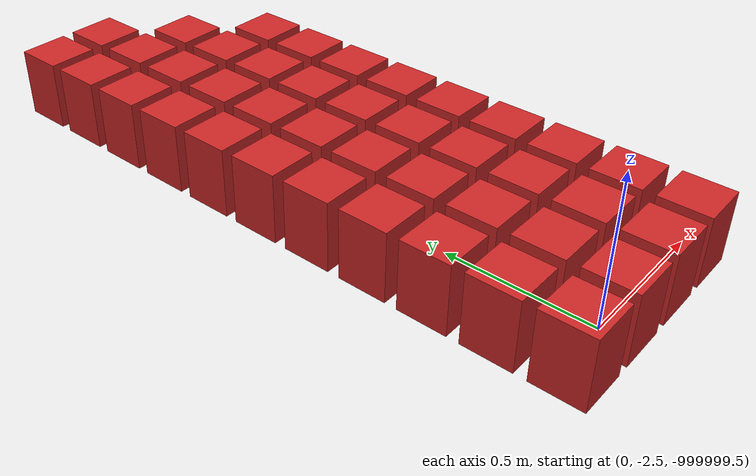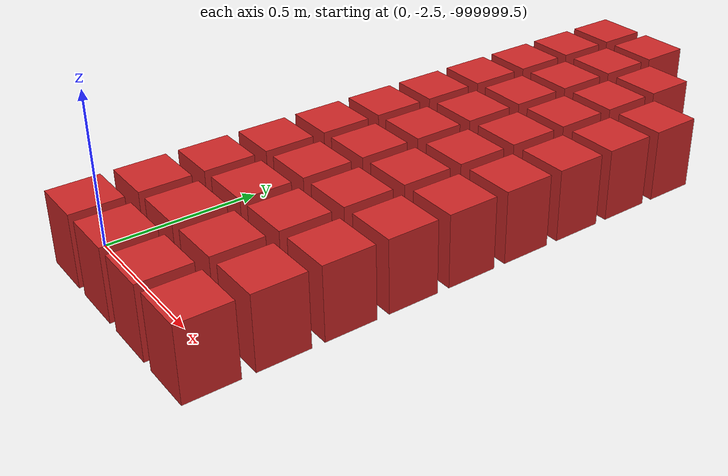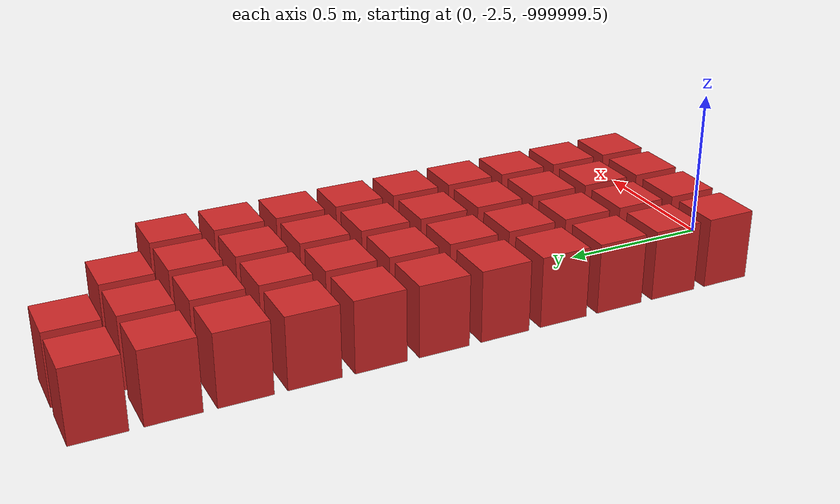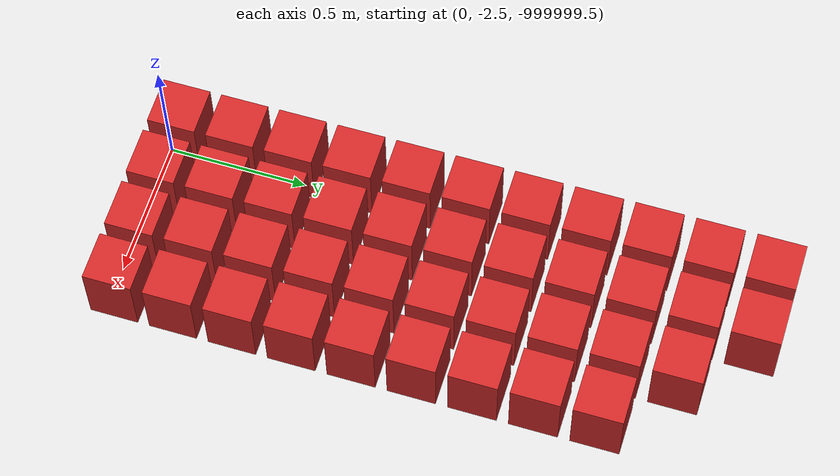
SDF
<sdf version="1.7">
 <world name="default">
  <model name="ground_plane">
   <static>1</static>
   <link name="link">
    <collision name="collision">
     <geometry><plane><normal>0 0 1</normal><size>100 100</size></plane></geometry>
     <surface>
      <contact><collide_bitmask>65535</collide_bitmask></contact>
      <friction><ode><mu>100</mu><mu2>50</mu2></ode></friction>
     </surface>
    </collision>
    <visual name="visual">
     <cast_shadows>0</cast_shadows>
     <geometry><plane><normal>0 0 1</normal><size>100 100</size></plane></geometry>
     <material>
      <script><uri>file://media/materials/scripts/gazebo.material</uri><name>Gazebo/Grey</name></script>
     </material>
    </visual>
   </link>
  </model>
  <model name="wall_11">
   <link name="link">
    <pose>0 0 0.5 0 -0 0</pose>
    <inertial>
     <mass>0.5167</mass>
     <inertia>
      <ixx>0.000861167</ixx>
      <ixy>0</ixy>
      <ixz>0</ixz>
      <iyy>0.000861167</iyy>
      <iyz>0</iyz>
      <izz>0.000861167</izz>
     </inertia>
    </inertial>
    <collision name="collision">
     <geometry><box><size>0.21 0.21 0.25</size></box></geometry>
     <surface>
      <contact>
       <poissons_ratio>0.347</poissons_ratio>
       <elastic_modulus>8.8e+09</elastic_modulus>
       <ode><kp>100000</kp><kd>100</kd><max_vel>100</max_vel><min_depth>0.001</min_depth></ode>
      </contact>
      <friction>
       <torsional>
        <coefficient>1</coefficient>
        <use_patch_radius>0</use_patch_radius>
        <surface_radius>0.01</surface_radius>
       </torsional>
      </friction>
     </surface>
    </collision>
    <visual name="visual">
     <geometry><box><size>0.175 0.175 0.25</size></box></geometry>
     <material>
      <script><uri>file://media/materials/scripts/gazebo.material</uri><name>Gazebo/Red</name></script>
     </material>
    </visual>
   </link>
   <pose>-0.108696 -2.5 -1e+06 0 -0 0</pose>
  </model>
  <model name="wall_12">
   <link name="link">
    <pose>0 0 0.5 0 -0 0</pose>
    <inertial>
     <mass>0.5167</mass>
     <inertia>
      <ixx>0.000861167</ixx>
      <ixy>0</ixy>
      <ixz>0</ixz>
      <iyy>0.000861167</iyy>
      <iyz>0</iyz>
      <izz>0.000861167</izz>
     </inertia>
    </inertial>
    <collision name="collision">
     <geometry><box><size>0.21 0.21 0.25</size></box></geometry>
     <surface>
      <contact>
       <poissons_ratio>0.347</poissons_ratio>
       <elastic_modulus>8.8e+09</elastic_modulus>
       <ode><kp>100000</kp><kd>100</kd><max_vel>100</max_vel><min_depth>0.001</min_depth></ode>
      </contact>
      <friction>
       <torsional>
        <coefficient>1</coefficient>
        <use_patch_radius>0</use_patch_radius>
        <surface_radius>0.01</surface_radius>
       </torsional>
      </friction>
     </surface>
    </collision>
    <visual name="visual">
     <geometry><box><size>0.175 0.175 0.25</size></box></geometry>
     <material>
      <script><uri>file://media/materials/scripts/gazebo.material</uri><name>Gazebo/Red</name></script>
     </material>
    </visual>
   </link>
   <pose>0.108696 -2.5 -1e+06 0 -0 0</pose>
  </model>
  <model name="wall_13">
   <link name="link">
    <pose>0 0 0.5 0 -0 0</pose>
    <inertial>
     <mass>0.5167</mass>
     <inertia>
      <ixx>0.000861167</ixx>
      <ixy>0</ixy>
      <ixz>0</ixz>
      <iyy>0.000861167</iyy>
      <iyz>0</iyz>
      <izz>0.000861167</izz>
     </inertia>
    </inertial>
    <collision name="collision">
     <geometry><box><size>0.21 0.21 0.25</size></box></geometry>
     <surface>
      <contact>
       <poissons_ratio>0.347</poissons_ratio>
       <elastic_modulus>8.8e+09</elastic_modulus>
       <ode><kp>100000</kp><kd>100</kd><max_vel>100</max_vel><min_depth>0.001</min_depth></ode>
      </contact>
      <friction>
       <torsional>
        <coefficient>1</coefficient>
        <use_patch_radius>0</use_patch_radius>
        <surface_radius>0.01</surface_radius>
       </torsional>
      </friction>
     </surface>
    </collision>
    <visual name="visual">
     <geometry><box><size>0.175 0.175 0.25</size></box></geometry>
     <material>
      <script><uri>file://media/materials/scripts/gazebo.material</uri><name>Gazebo/Red</name></script>
     </material>
    </visual>
   </link>
   <pose>0.326087 -2.5 -1e+06 0 -0 0</pose>
  </model>
  <model name="wall_14">
   <link name="link">
    <pose>0 0 0.5 0 -0 0</pose>
    <inertial>
     <mass>0.5167</mass>
     <inertia>
      <ixx>0.000861167</ixx>
      <ixy>0</ixy>
      <ixz>0</ixz>
      <iyy>0.000861167</iyy>
      <iyz>0</iyz>
      <izz>0.000861167</izz>
     </inertia>
    </inertial>
    <collision name="collision">
     <geometry><box><size>0.21 0.21 0.25</size></box></geometry>
     <surface>
      <contact>
       <poissons_ratio>0.347</poissons_ratio>
       <elastic_modulus>8.8e+09</elastic_modulus>
       <ode><kp>100000</kp><kd>100</kd><max_vel>100</max_vel><min_depth>0.001</min_depth></ode>
      </contact>
      <friction>
       <torsional>
        <coefficient>1</coefficient>
        <use_patch_radius>0</use_patch_radius>
        <surface_radius>0.01</surface_radius>
       </torsional>
      </friction>
     </surface>
    </collision>
    <visual name="visual">
     <geometry><box><size>0.175 0.175 0.25</size></box></geometry>
     <material>
      <script><uri>file://media/materials/scripts/gazebo.material</uri><name>Gazebo/Red</name></script>
     </material>
    </visual>
   </link>
   <pose>0.543478 -2.5 -1e+06 0 -0 0</pose>
  </model>
  <model name="wall_34">
   <link name="link">
    <pose>0 0 0.5 0 -0 0</pose>
    <inertial>
     <mass>0.5167</mass>
     <inertia>
      <ixx>0.000861167</ixx>
      <ixy>0</ixy>
      <ixz>0</ixz>
      <iyy>0.000861167</iyy>
      <iyz>0</iyz>
      <izz>0.000861167</izz>
     </inertia>
    </inertial>
    <collision name="collision">
     <geometry><box><size>0.21 0.21 0.25</size></box></geometry>
     <surface>
      <contact>
       <poissons_ratio>0.347</poissons_ratio>
       <elastic_modulus>8.8e+09</elastic_modulus>
       <ode><kp>100000</kp><kd>100</kd><max_vel>100</max_vel><min_depth>0.001</min_depth></ode>
      </contact>
      <friction>
       <torsional>
        <coefficient>1</coefficient>
        <use_patch_radius>0</use_patch_radius>
        <surface_radius>0.01</surface_radius>
       </torsional>
      </friction>
     </surface>
    </collision>
    <visual name="visual">
     <geometry><box><size>0.175 0.175 0.25</size></box></geometry>
     <material>
      <script><uri>file://media/materials/scripts/gazebo.material</uri><name>Gazebo/Red</name></script>
     </material>
    </visual>
   </link>
   <pose>-0.108696 -2.28261 -1e+06 0 -0 0</pose>
  </model>
  <model name="wall_35">
   <link name="link">
    <pose>0 0 0.5 0 -0 0</pose>
    <inertial>
     <mass>0.5167</mass>
     <inertia>
      <ixx>0.000861167</ixx>
      <ixy>0</ixy>
      <ixz>0</ixz>
      <iyy>0.000861167</iyy>
      <iyz>0</iyz>
      <izz>0.000861167</izz>
     </inertia>
    </inertial>
    <collision name="collision">
     <geometry><box><size>0.21 0.21 0.25</size></box></geometry>
     <surface>
      <contact>
       <poissons_ratio>0.347</poissons_ratio>
       <elastic_modulus>8.8e+09</elastic_modulus>
       <ode><kp>100000</kp><kd>100</kd><max_vel>100</max_vel><min_depth>0.001</min_depth></ode>
      </contact>
      <friction>
       <torsional>
        <coefficient>1</coefficient>
        <use_patch_radius>0</use_patch_radius>
        <surface_radius>0.01</surface_radius>
       </torsional>
      </friction>
     </surface>
    </collision>
    <visual name="visual">
     <geometry><box><size>0.175 0.175 0.25</size></box></geometry>
     <material>
      <script><uri>file://media/materials/scripts/gazebo.material</uri><name>Gazebo/Red</name></script>
     </material>
    </visual>
   </link>
   <pose>0.108696 -2.28261 -1e+06 0 -0 0</pose>
  </model>
  <model name="wall_36">
   <link name="link">
    <pose>0 0 0.5 0 -0 0</pose>
    <inertial>
     <mass>0.5167</mass>
     <inertia>
      <ixx>0.000861167</ixx>
      <ixy>0</ixy>
      <ixz>0</ixz>
      <iyy>0.000861167</iyy>
      <iyz>0</iyz>
      <izz>0.000861167</izz>
     </inertia>
    </inertial>
    <collision name="collision">
     <geometry><box><size>0.21 0.21 0.25</size></box></geometry>
     <surface>
      <contact>
       <poissons_ratio>0.347</poissons_ratio>
       <elastic_modulus>8.8e+09</elastic_modulus>
       <ode><kp>100000</kp><kd>100</kd><max_vel>100</max_vel><min_depth>0.001</min_depth></ode>
      </contact>
      <friction>
       <torsional>
        <coefficient>1</coefficient>
        <use_patch_radius>0</use_patch_radius>
        <surface_radius>0.01</surface_radius>
       </torsional>
      </friction>
     </surface>
    </collision>
    <visual name="visual">
     <geometry><box><size>0.175 0.175 0.25</size></box></geometry>
     <material>
      <script><uri>file://media/materials/scripts/gazebo.material</uri><name>Gazebo/Red</name></script>
     </material>
    </visual>
   </link>
   <pose>0.326087 -2.28261 -1e+06 0 -0 0</pose>
  </model>
  <model name="wall_37">
   <link name="link">
    <pose>0 0 0.5 0 -0 0</pose>
    <inertial>
     <mass>0.5167</mass>
     <inertia>
      <ixx>0.000861167</ixx>
      <ixy>0</ixy>
      <ixz>0</ixz>
      <iyy>0.000861167</iyy>
      <iyz>0</iyz>
      <izz>0.000861167</izz>
     </inertia>
    </inertial>
    <collision name="collision">
     <geometry><box><size>0.21 0.21 0.25</size></box></geometry>
     <surface>
      <contact>
       <poissons_ratio>0.347</poissons_ratio>
       <elastic_modulus>8.8e+09</elastic_modulus>
       <ode><kp>100000</kp><kd>100</kd><max_vel>100</max_vel><min_depth>0.001</min_depth></ode>
      </contact>
      <friction>
       <torsional>
        <coefficient>1</coefficient>
        <use_patch_radius>0</use_patch_radius>
        <surface_radius>0.01</surface_radius>
       </torsional>
      </friction>
     </surface>
    </collision>
    <visual name="visual">
     <geometry><box><size>0.175 0.175 0.25</size></box></geometry>
     <material>
      <script><uri>file://media/materials/scripts/gazebo.material</uri><name>Gazebo/Red</name></script>
     </material>
    </visual>
   </link>
   <pose>0.543478 -2.28261 -1e+06 0 -0 0</pose>
  </model>
  <model name="wall_57">
   <link name="link">
    <pose>0 0 0.5 0 -0 0</pose>
    <inertial>
     <mass>0.5167</mass>
     <inertia>
      <ixx>0.000861167</ixx>
      <ixy>0</ixy>
      <ixz>0</ixz>
      <iyy>0.000861167</iyy>
      <iyz>0</iyz>
      <izz>0.000861167</izz>
     </inertia>
    </inertial>
    <collision name="collision">
     <geometry><box><size>0.21 0.21 0.25</size></box></geometry>
     <surface>
      <contact>
       <poissons_ratio>0.347</poissons_ratio>
       <elastic_modulus>8.8e+09</elastic_modulus>
       <ode><kp>100000</kp><kd>100</kd><max_vel>100</max_vel><min_depth>0.001</min_depth></ode>
      </contact>
      <friction>
       <torsional>
        <coefficient>1</coefficient>
        <use_patch_radius>0</use_patch_radius>
        <surface_radius>0.01</surface_radius>
       </torsional>
      </friction>
     </surface>
    </collision>
    <visual name="visual">
     <geometry><box><size>0.175 0.175 0.25</size></box></geometry>
     <material>
      <script><uri>file://media/materials/scripts/gazebo.material</uri><name>Gazebo/Red</name></script>
     </material>
    </visual>
   </link>
   <pose>-0.108696 -2.06522 -1e+06 0 -0 0</pose>
  </model>
  <model name="wall_58">
   <link name="link">
    <pose>0 0 0.5 0 -0 0</pose>
    <inertial>
     <mass>0.5167</mass>
     <inertia>
      <ixx>0.000861167</ixx>
      <ixy>0</ixy>
      <ixz>0</ixz>
      <iyy>0.000861167</iyy>
      <iyz>0</iyz>
      <izz>0.000861167</izz>
     </inertia>
    </inertial>
    <collision name="collision">
     <geometry><box><size>0.21 0.21 0.25</size></box></geometry>
     <surface>
      <contact>
       <poissons_ratio>0.347</poissons_ratio>
       <elastic_modulus>8.8e+09</elastic_modulus>
       <ode><kp>100000</kp><kd>100</kd><max_vel>100</max_vel><min_depth>0.001</min_depth></ode>
      </contact>
      <friction>
       <torsional>
        <coefficient>1</coefficient>
        <use_patch_radius>0</use_patch_radius>
        <surface_radius>0.01</surface_radius>
       </torsional>
      </friction>
     </surface>
    </collision>
    <visual name="visual">
     <geometry><box><size>0.175 0.175 0.25</size></box></geometry>
     <material>
      <script><uri>file://media/materials/scripts/gazebo.material</uri><name>Gazebo/Red</name></script>
     </material>
    </visual>
   </link>
   <pose>0.108696 -2.06522 -1e+06 0 -0 0</pose>
  </model>
  <model name="wall_59">
   <link name="link">
    <pose>0 0 0.5 0 -0 0</pose>
    <inertial>
     <mass>0.5167</mass>
     <inertia>
      <ixx>0.000861167</ixx>
      <ixy>0</ixy>
      <ixz>0</ixz>
      <iyy>0.000861167</iyy>
      <iyz>0</iyz>
      <izz>0.000861167</izz>
     </inertia>
    </inertial>
    <collision name="collision">
     <geometry><box><size>0.21 0.21 0.25</size></box></geometry>
     <surface>
      <contact>
       <poissons_ratio>0.347</poissons_ratio>
       <elastic_modulus>8.8e+09</elastic_modulus>
       <ode><kp>100000</kp><kd>100</kd><max_vel>100</max_vel><min_depth>0.001</min_depth></ode>
      </contact>
      <friction>
       <torsional>
        <coefficient>1</coefficient>
        <use_patch_radius>0</use_patch_radius>
        <surface_radius>0.01</surface_radius>
       </torsional>
      </friction>
     </surface>
    </collision>
    <visual name="visual">
     <geometry><box><size>0.175 0.175 0.25</size></box></geometry>
     <material>
      <script><uri>file://media/materials/scripts/gazebo.material</uri><name>Gazebo/Red</name></script>
     </material>
    </visual>
   </link>
   <pose>0.326087 -2.06522 -1e+06 0 -0 0</pose>
  </model>
  <model name="wall_60">
   <link name="link">
    <pose>0 0 0.5 0 -0 0</pose>
    <inertial>
     <mass>0.5167</mass>
     <inertia>
      <ixx>0.000861167</ixx>
      <ixy>0</ixy>
      <ixz>0</ixz>
      <iyy>0.000861167</iyy>
      <iyz>0</iyz>
      <izz>0.000861167</izz>
     </inertia>
    </inertial>
    <collision name="collision">
     <geometry><box><size>0.21 0.21 0.25</size></box></geometry>
     <surface>
      <contact>
       <poissons_ratio>0.347</poissons_ratio>
       <elastic_modulus>8.8e+09</elastic_modulus>
       <ode><kp>100000</kp><kd>100</kd><max_vel>100</max_vel><min_depth>0.001</min_depth></ode>
      </contact>
      <friction>
       <torsional>
        <coefficient>1</coefficient>
        <use_patch_radius>0</use_patch_radius>
        <surface_radius>0.01</surface_radius>
       </torsional>
      </friction>
     </surface>
    </collision>
    <visual name="visual">
     <geometry><box><size>0.175 0.175 0.25</size></box></geometry>
     <material>
      <script><uri>file://media/materials/scripts/gazebo.material</uri><name>Gazebo/Red</name></script>
     </material>
    </visual>
   </link>
   <pose>0.543478 -2.06522 -1e+06 0 -0 0</pose>
  </model>
  <model name="wall_80">
   <link name="link">
    <pose>0 0 0.5 0 -0 0</pose>
    <inertial>
     <mass>0.5167</mass>
     <inertia>
      <ixx>0.000861167</ixx>
      <ixy>0</ixy>
      <ixz>0</ixz>
      <iyy>0.000861167</iyy>
      <iyz>0</iyz>
      <izz>0.000861167</izz>
     </inertia>
    </inertial>
    <collision name="collision">
     <geometry><box><size>0.21 0.21 0.25</size></box></geometry>
     <surface>
      <contact>
       <poissons_ratio>0.347</poissons_ratio>
       <elastic_modulus>8.8e+09</elastic_modulus>
       <ode><kp>100000</kp><kd>100</kd><max_vel>100</max_vel><min_depth>0.001</min_depth></ode>
      </contact>
      <friction>
       <torsional>
        <coefficient>1</coefficient>
        <use_patch_radius>0</use_patch_radius>
        <surface_radius>0.01</surface_radius>
       </torsional>
      </friction>
     </surface>
    </collision>
    <visual name="visual">
     <geometry><box><size>0.175 0.175 0.25</size></box></geometry>
     <material>
      <script><uri>file://media/materials/scripts/gazebo.material</uri><name>Gazebo/Red</name></script>
     </material>
    </visual>
   </link>
   <pose>-0.108696 -1.84783 -1e+06 0 -0 0</pose>
  </model>
  <model name="wall_81">
   <link name="link">
    <pose>0 0 0.5 0 -0 0</pose>
    <inertial>
     <mass>0.5167</mass>
     <inertia>
      <ixx>0.000861167</ixx>
      <ixy>0</ixy>
      <ixz>0</ixz>
      <iyy>0.000861167</iyy>
      <iyz>0</iyz>
      <izz>0.000861167</izz>
     </inertia>
    </inertial>
    <collision name="collision">
     <geometry><box><size>0.21 0.21 0.25</size></box></geometry>
     <surface>
      <contact>
       <poissons_ratio>0.347</poissons_ratio>
       <elastic_modulus>8.8e+09</elastic_modulus>
       <ode><kp>100000</kp><kd>100</kd><max_vel>100</max_vel><min_depth>0.001</min_depth></ode>
      </contact>
      <friction>
       <torsional>
        <coefficient>1</coefficient>
        <use_patch_radius>0</use_patch_radius>
        <surface_radius>0.01</surface_radius>
       </torsional>
      </friction>
     </surface>
    </collision>
    <visual name="visual">
     <geometry><box><size>0.175 0.175 0.25</size></box></geometry>
     <material>
      <script><uri>file://media/materials/scripts/gazebo.material</uri><name>Gazebo/Red</name></script>
     </material>
    </visual>
   </link>
   <pose>0.108696 -1.84783 -1e+06 0 -0 0</pose>
  </model>
  <model name="wall_82">
   <link name="link">
    <pose>0 0 0.5 0 -0 0</pose>
    <inertial>
     <mass>0.5167</mass>
     <inertia>
      <ixx>0.000861167</ixx>
      <ixy>0</ixy>
      <ixz>0</ixz>
      <iyy>0.000861167</iyy>
      <iyz>0</iyz>
      <izz>0.000861167</izz>
     </inertia>
    </inertial>
    <collision name="collision">
     <geometry><box><size>0.21 0.21 0.25</size></box></geometry>
     <surface>
      <contact>
       <poissons_ratio>0.347</poissons_ratio>
       <elastic_modulus>8.8e+09</elastic_modulus>
       <ode><kp>100000</kp><kd>100</kd><max_vel>100</max_vel><min_depth>0.001</min_depth></ode>
      </contact>
      <friction>
       <torsional>
        <coefficient>1</coefficient>
        <use_patch_radius>0</use_patch_radius>
        <surface_radius>0.01</surface_radius>
       </torsional>
      </friction>
     </surface>
    </collision>
    <visual name="visual">
     <geometry><box><size>0.175 0.175 0.25</size></box></geometry>
     <material>
      <script><uri>file://media/materials/scripts/gazebo.material</uri><name>Gazebo/Red</name></script>
     </material>
    </visual>
   </link>
   <pose>0.326087 -1.84783 -1e+06 0 -0 0</pose>
  </model>
  <model name="wall_83">
   <link name="link">
    <pose>0 0 0.5 0 -0 0</pose>
    <inertial>
     <mass>0.5167</mass>
     <inertia>
      <ixx>0.000861167</ixx>
      <ixy>0</ixy>
      <ixz>0</ixz>
      <iyy>0.000861167</iyy>
      <iyz>0</iyz>
      <izz>0.000861167</izz>
     </inertia>
    </inertial>
    <collision name="collision">
     <geometry><box><size>0.21 0.21 0.25</size></box></geometry>
     <surface>
      <contact>
       <poissons_ratio>0.347</poissons_ratio>
       <elastic_modulus>8.8e+09</elastic_modulus>
       <ode><kp>100000</kp><kd>100</kd><max_vel>100</max_vel><min_depth>0.001</min_depth></ode>
      </contact>
      <friction>
       <torsional>
        <coefficient>1</coefficient>
        <use_patch_radius>0</use_patch_radius>
        <surface_radius>0.01</surface_radius>
       </torsional>
      </friction>
     </surface>
    </collision>
    <visual name="visual">
     <geometry><box><size>0.175 0.175 0.25</size></box></geometry>
     <material>
      <script><uri>file://media/materials/scripts/gazebo.material</uri><name>Gazebo/Red</name></script>
     </material>
    </visual>
   </link>
   <pose>0.543478 -1.84783 -1e+06 0 -0 0</pose>
  </model>
  <model name="wall_103">
   <link name="link">
    <pose>0 0 0.5 0 -0 0</pose>
    <inertial>
     <mass>0.5167</mass>
     <inertia>
      <ixx>0.000861167</ixx>
      <ixy>0</ixy>
      <ixz>0</ixz>
      <iyy>0.000861167</iyy>
      <iyz>0</iyz>
      <izz>0.000861167</izz>
     </inertia>
    </inertial>
    <collision name="collision">
     <geometry><box><size>0.21 0.21 0.25</size></box></geometry>
     <surface>
      <contact>
       <poissons_ratio>0.347</poissons_ratio>
       <elastic_modulus>8.8e+09</elastic_modulus>
       <ode><kp>100000</kp><kd>100</kd><max_vel>100</max_vel><min_depth>0.001</min_depth></ode>
      </contact>
      <friction>
       <torsional>
        <coefficient>1</coefficient>
        <use_patch_radius>0</use_patch_radius>
        <surface_radius>0.01</surface_radius>
       </torsional>
      </friction>
     </surface>
    </collision>
    <visual name="visual">
     <geometry><box><size>0.175 0.175 0.25</size></box></geometry>
     <material>
      <script><uri>file://media/materials/scripts/gazebo.material</uri><name>Gazebo/Red</name></script>
     </material>
    </visual>
   </link>
   <pose>-0.108696 -1.63043 -1e+06 0 -0 0</pose>
  </model>
  <model name="wall_104">
   <link name="link">
    <pose>0 0 0.5 0 -0 0</pose>
    <inertial>
     <mass>0.5167</mass>
     <inertia>
      <ixx>0.000861167</ixx>
      <ixy>0</ixy>
      <ixz>0</ixz>
      <iyy>0.000861167</iyy>
      <iyz>0</iyz>
      <izz>0.000861167</izz>
     </inertia>
    </inertial>
    <collision name="collision">
     <geometry><box><size>0.21 0.21 0.25</size></box></geometry>
     <surface>
      <contact>
       <poissons_ratio>0.347</poissons_ratio>
       <elastic_modulus>8.8e+09</elastic_modulus>
       <ode><kp>100000</kp><kd>100</kd><max_vel>100</max_vel><min_depth>0.001</min_depth></ode>
      </contact>
      <friction>
       <torsional>
        <coefficient>1</coefficient>
        <use_patch_radius>0</use_patch_radius>
        <surface_radius>0.01</surface_radius>
       </torsional>
      </friction>
     </surface>
    </collision>
    <visual name="visual">
     <geometry><box><size>0.175 0.175 0.25</size></box></geometry>
     <material>
      <script><uri>file://media/materials/scripts/gazebo.material</uri><name>Gazebo/Red</name></script>
     </material>
    </visual>
   </link>
   <pose>0.108696 -1.63043 -1e+06 0 -0 0</pose>
  </model>
  <model name="wall_105">
   <link name="link">
    <pose>0 0 0.5 0 -0 0</pose>
    <inertial>
     <mass>0.5167</mass>
     <inertia>
      <ixx>0.000861167</ixx>
      <ixy>0</ixy>
      <ixz>0</ixz>
      <iyy>0.000861167</iyy>
      <iyz>0</iyz>
      <izz>0.000861167</izz>
     </inertia>
    </inertial>
    <collision name="collision">
     <geometry><box><size>0.21 0.21 0.25</size></box></geometry>
     <surface>
      <contact>
       <poissons_ratio>0.347</poissons_ratio>
       <elastic_modulus>8.8e+09</elastic_modulus>
       <ode><kp>100000</kp><kd>100</kd><max_vel>100</max_vel><min_depth>0.001</min_depth></ode>
      </contact>
      <friction>
       <torsional>
        <coefficient>1</coefficient>
        <use_patch_radius>0</use_patch_radius>
        <surface_radius>0.01</surface_radius>
       </torsional>
      </friction>
     </surface>
    </collision>
    <visual name="visual">
     <geometry><box><size>0.175 0.175 0.25</size></box></geometry>
     <material>
      <script><uri>file://media/materials/scripts/gazebo.material</uri><name>Gazebo/Red</name></script>
     </material>
    </visual>
   </link>
   <pose>0.326087 -1.63043 -1e+06 0 -0 0</pose>
  </model>
  <model name="wall_106">
   <link name="link">
    <pose>0 0 0.5 0 -0 0</pose>
    <inertial>
     <mass>0.5167</mass>
     <inertia>
      <ixx>0.000861167</ixx>
      <ixy>0</ixy>
      <ixz>0</ixz>
      <iyy>0.000861167</iyy>
      <iyz>0</iyz>
      <izz>0.000861167</izz>
     </inertia>
    </inertial>
    <collision name="collision">
     <geometry><box><size>0.21 0.21 0.25</size></box></geometry>
     <surface>
      <contact>
       <poissons_ratio>0.347</poissons_ratio>
       <elastic_modulus>8.8e+09</elastic_modulus>
       <ode><kp>100000</kp><kd>100</kd><max_vel>100</max_vel><min_depth>0.001</min_depth></ode>
      </contact>
      <friction>
       <torsional>
        <coefficient>1</coefficient>
        <use_patch_radius>0</use_patch_radius>
        <surface_radius>0.01</surface_radius>
       </torsional>
      </friction>
     </surface>
    </collision>
    <visual name="visual">
     <geometry><box><size>0.175 0.175 0.25</size></box></geometry>
     <material>
      <script><uri>file://media/materials/scripts/gazebo.material</uri><name>Gazebo/Red</name></script>
     </material>
    </visual>
   </link>
   <pose>0.543478 -1.63043 -1e+06 0 -0 0</pose>
  </model>
  <model name="wall_126">
   <link name="link">
    <pose>0 0 0.5 0 -0 0</pose>
    <inertial>
     <mass>0.5167</mass>
     <inertia>
      <ixx>0.000861167</ixx>
      <ixy>0</ixy>
      <ixz>0</ixz>
      <iyy>0.000861167</iyy>
      <iyz>0</iyz>
      <izz>0.000861167</izz>
     </inertia>
    </inertial>
    <collision name="collision">
     <geometry><box><size>0.21 0.21 0.25</size></box></geometry>
     <surface>
      <contact>
       <poissons_ratio>0.347</poissons_ratio>
       <elastic_modulus>8.8e+09</elastic_modulus>
       <ode><kp>100000</kp><kd>100</kd><max_vel>100</max_vel><min_depth>0.001</min_depth></ode>
      </contact>
      <friction>
       <torsional>
        <coefficient>1</coefficient>
        <use_patch_radius>0</use_patch_radius>
        <surface_radius>0.01</surface_radius>
       </torsional>
      </friction>
     </surface>
    </collision>
    <visual name="visual">
     <geometry><box><size>0.175 0.175 0.25</size></box></geometry>
     <material>
      <script><uri>file://media/materials/scripts/gazebo.material</uri><name>Gazebo/Red</name></script>
     </material>
    </visual>
   </link>
   <pose>-0.108696 -1.41304 -1e+06 0 -0 0</pose>
  </model>
  <model name="wall_127">
   <link name="link">
    <pose>0 0 0.5 0 -0 0</pose>
    <inertial>
     <mass>0.5167</mass>
     <inertia>
      <ixx>0.000861167</ixx>
      <ixy>0</ixy>
      <ixz>0</ixz>
      <iyy>0.000861167</iyy>
      <iyz>0</iyz>
      <izz>0.000861167</izz>
     </inertia>
    </inertial>
    <collision name="collision">
     <geometry><box><size>0.21 0.21 0.25</size></box></geometry>
     <surface>
      <contact>
       <poissons_ratio>0.347</poissons_ratio>
       <elastic_modulus>8.8e+09</elastic_modulus>
       <ode><kp>100000</kp><kd>100</kd><max_vel>100</max_vel><min_depth>0.001</min_depth></ode>
      </contact>
      <friction>
       <torsional>
        <coefficient>1</coefficient>
        <use_patch_radius>0</use_patch_radius>
        <surface_radius>0.01</surface_radius>
       </torsional>
      </friction>
     </surface>
    </collision>
    <visual name="visual">
     <geometry><box><size>0.175 0.175 0.25</size></box></geometry>
     <material>
      <script><uri>file://media/materials/scripts/gazebo.material</uri><name>Gazebo/Red</name></script>
     </material>
    </visual>
   </link>
   <pose>0.108696 -1.41304 -1e+06 0 -0 0</pose>
  </model>
  <model name="wall_128">
   <link name="link">
    <pose>0 0 0.5 0 -0 0</pose>
    <inertial>
     <mass>0.5167</mass>
     <inertia>
      <ixx>0.000861167</ixx>
      <ixy>0</ixy>
      <ixz>0</ixz>
      <iyy>0.000861167</iyy>
      <iyz>0</iyz>
      <izz>0.000861167</izz>
     </inertia>
    </inertial>
    <collision name="collision">
     <geometry><box><size>0.21 0.21 0.25</size></box></geometry>
     <surface>
      <contact>
       <poissons_ratio>0.347</poissons_ratio>
       <elastic_modulus>8.8e+09</elastic_modulus>
       <ode><kp>100000</kp><kd>100</kd><max_vel>100</max_vel><min_depth>0.001</min_depth></ode>
      </contact>
      <friction>
       <torsional>
        <coefficient>1</coefficient>
        <use_patch_radius>0</use_patch_radius>
        <surface_radius>0.01</surface_radius>
       </torsional>
      </friction>
     </surface>
    </collision>
    <visual name="visual">
     <geometry><box><size>0.175 0.175 0.25</size></box></geometry>
     <material>
      <script><uri>file://media/materials/scripts/gazebo.material</uri><name>Gazebo/Red</name></script>
     </material>
    </visual>
   </link>
   <pose>0.326087 -1.41304 -1e+06 0 -0 0</pose>
  </model>
  <model name="wall_129">
   <link name="link">
    <pose>0 0 0.5 0 -0 0</pose>
    <inertial>
     <mass>0.5167</mass>
     <inertia>
      <ixx>0.000861167</ixx>
      <ixy>0</ixy>
      <ixz>0</ixz>
      <iyy>0.000861167</iyy>
      <iyz>0</iyz>
      <izz>0.000861167</izz>
     </inertia>
    </inertial>
    <collision name="collision">
     <geometry><box><size>0.21 0.21 0.25</size></box></geometry>
     <surface>
      <contact>
       <poissons_ratio>0.347</poissons_ratio>
       <elastic_modulus>8.8e+09</elastic_modulus>
       <ode><kp>100000</kp><kd>100</kd><max_vel>100</max_vel><min_depth>0.001</min_depth></ode>
      </contact>
      <friction>
       <torsional>
        <coefficient>1</coefficient>
        <use_patch_radius>0</use_patch_radius>
        <surface_radius>0.01</surface_radius>
       </torsional>
      </friction>
     </surface>
    </collision>
    <visual name="visual">
     <geometry><box><size>0.175 0.175 0.25</size></box></geometry>
     <material>
      <script><uri>file://media/materials/scripts/gazebo.material</uri><name>Gazebo/Red</name></script>
     </material>
    </visual>
   </link>
   <pose>0.543478 -1.41304 -1e+06 0 -0 0</pose>
  </model>
  <model name="wall_149">
   <link name="link">
    <pose>0 0 0.5 0 -0 0</pose>
    <inertial>
     <mass>0.5167</mass>
     <inertia>
      <ixx>0.000861167</ixx>
      <ixy>0</ixy>
      <ixz>0</ixz>
      <iyy>0.000861167</iyy>
      <iyz>0</iyz>
      <izz>0.000861167</izz>
     </inertia>
    </inertial>
    <collision name="collision">
     <geometry><box><size>0.21 0.21 0.25</size></box></geometry>
     <surface>
      <contact>
       <poissons_ratio>0.347</poissons_ratio>
       <elastic_modulus>8.8e+09</elastic_modulus>
       <ode><kp>100000</kp><kd>100</kd><max_vel>100</max_vel><min_depth>0.001</min_depth></ode>
      </contact>
      <friction>
       <torsional>
        <coefficient>1</coefficient>
        <use_patch_radius>0</use_patch_radius>
        <surface_radius>0.01</surface_radius>
       </torsional>
      </friction>
     </surface>
    </collision>
    <visual name="visual">
     <geometry><box><size>0.175 0.175 0.25</size></box></geometry>
     <material>
      <script><uri>file://media/materials/scripts/gazebo.material</uri><name>Gazebo/Red</name></script>
     </material>
    </visual>
   </link>
   <pose>-0.108696 -1.19565 -1e+06 0 -0 0</pose>
  </model>
  <model name="wall_150">
   <link name="link">
    <pose>0 0 0.5 0 -0 0</pose>
    <inertial>
     <mass>0.5167</mass>
     <inertia>
      <ixx>0.000861167</ixx>
      <ixy>0</ixy>
      <ixz>0</ixz>
      <iyy>0.000861167</iyy>
      <iyz>0</iyz>
      <izz>0.000861167</izz>
     </inertia>
    </inertial>
    <collision name="collision">
     <geometry><box><size>0.21 0.21 0.25</size></box></geometry>
     <surface>
      <contact>
       <poissons_ratio>0.347</poissons_ratio>
       <elastic_modulus>8.8e+09</elastic_modulus>
       <ode><kp>100000</kp><kd>100</kd><max_vel>100</max_vel><min_depth>0.001</min_depth></ode>
      </contact>
      <friction>
       <torsional>
        <coefficient>1</coefficient>
        <use_patch_radius>0</use_patch_radius>
        <surface_radius>0.01</surface_radius>
       </torsional>
      </friction>
     </surface>
    </collision>
    <visual name="visual">
     <geometry><box><size>0.175 0.175 0.25</size></box></geometry>
     <material>
      <script><uri>file://media/materials/scripts/gazebo.material</uri><name>Gazebo/Red</name></script>
     </material>
    </visual>
   </link>
   <pose>0.108696 -1.19565 -1e+06 0 -0 0</pose>
  </model>
  <model name="wall_151">
   <link name="link">
    <pose>0 0 0.5 0 -0 0</pose>
    <inertial>
     <mass>0.5167</mass>
     <inertia>
      <ixx>0.000861167</ixx>
      <ixy>0</ixy>
      <ixz>0</ixz>
      <iyy>0.000861167</iyy>
      <iyz>0</iyz>
      <izz>0.000861167</izz>
     </inertia>
    </inertial>
    <collision name="collision">
     <geometry><box><size>0.21 0.21 0.25</size></box></geometry>
     <surface>
      <contact>
       <poissons_ratio>0.347</poissons_ratio>
       <elastic_modulus>8.8e+09</elastic_modulus>
       <ode><kp>100000</kp><kd>100</kd><max_vel>100</max_vel><min_depth>0.001</min_depth></ode>
      </contact>
      <friction>
       <torsional>
        <coefficient>1</coefficient>
        <use_patch_radius>0</use_patch_radius>
        <surface_radius>0.01</surface_radius>
       </torsional>
      </friction>
     </surface>
    </collision>
    <visual name="visual">
     <geometry><box><size>0.175 0.175 0.25</size></box></geometry>
     <material>
      <script><uri>file://media/materials/scripts/gazebo.material</uri><name>Gazebo/Red</name></script>
     </material>
    </visual>
   </link>
   <pose>0.326087 -1.19565 -1e+06 0 -0 0</pose>
  </model>
  <model name="wall_152">
   <link name="link">
    <pose>0 0 0.5 0 -0 0</pose>
    <inertial>
     <mass>0.5167</mass>
     <inertia>
      <ixx>0.000861167</ixx>
      <ixy>0</ixy>
      <ixz>0</ixz>
      <iyy>0.000861167</iyy>
      <iyz>0</iyz>
      <izz>0.000861167</izz>
     </inertia>
    </inertial>
    <collision name="collision">
     <geometry><box><size>0.21 0.21 0.25</size></box></geometry>
     <surface>
      <contact>
       <poissons_ratio>0.347</poissons_ratio>
       <elastic_modulus>8.8e+09</elastic_modulus>
       <ode><kp>100000</kp><kd>100</kd><max_vel>100</max_vel><min_depth>0.001</min_depth></ode>
      </contact>
      <friction>
       <torsional>
        <coefficient>1</coefficient>
        <use_patch_radius>0</use_patch_radius>
        <surface_radius>0.01</surface_radius>
       </torsional>
      </friction>
     </surface>
    </collision>
    <visual name="visual">
     <geometry><box><size>0.175 0.175 0.25</size></box></geometry>
     <material>
      <script><uri>file://media/materials/scripts/gazebo.material</uri><name>Gazebo/Red</name></script>
     </material>
    </visual>
   </link>
   <pose>0.543478 -1.19565 -1e+06 0 -0 0</pose>
  </model>
  <model name="wall_172">
   <link name="link">
    <pose>0 0 0.5 0 -0 0</pose>
    <inertial>
     <mass>0.5167</mass>
     <inertia>
      <ixx>0.000861167</ixx>
      <ixy>0</ixy>
      <ixz>0</ixz>
      <iyy>0.000861167</iyy>
      <iyz>0</iyz>
      <izz>0.000861167</izz>
     </inertia>
    </inertial>
    <collision name="collision">
     <geometry><box><size>0.21 0.21 0.25</size></box></geometry>
     <surface>
      <contact>
       <poissons_ratio>0.347</poissons_ratio>
       <elastic_modulus>8.8e+09</elastic_modulus>
       <ode><kp>100000</kp><kd>100</kd><max_vel>100</max_vel><min_depth>0.001</min_depth></ode>
      </contact>
      <friction>
       <torsional>
        <coefficient>1</coefficient>
        <use_patch_radius>0</use_patch_radius>
        <surface_radius>0.01</surface_radius>
       </torsional>
      </friction>
     </surface>
    </collision>
    <visual name="visual">
     <geometry><box><size>0.175 0.175 0.25</size></box></geometry>
     <material>
      <script><uri>file://media/materials/scripts/gazebo.material</uri><name>Gazebo/Red</name></script>
     </material>
    </visual>
   </link>
   <pose>-0.108696 -0.978261 -1e+06 0 -0 0</pose>
  </model>
  <model name="wall_173">
   <link name="link">
    <pose>0 0 0.5 0 -0 0</pose>
    <inertial>
     <mass>0.5167</mass>
     <inertia>
      <ixx>0.000861167</ixx>
      <ixy>0</ixy>
      <ixz>0</ixz>
      <iyy>0.000861167</iyy>
      <iyz>0</iyz>
      <izz>0.000861167</izz>
     </inertia>
    </inertial>
    <collision name="collision">
     <geometry><box><size>0.21 0.21 0.25</size></box></geometry>
     <surface>
      <contact>
       <poissons_ratio>0.347</poissons_ratio>
       <elastic_modulus>8.8e+09</elastic_modulus>
       <ode><kp>100000</kp><kd>100</kd><max_vel>100</max_vel><min_depth>0.001</min_depth></ode>
      </contact>
      <friction>
       <torsional>
        <coefficient>1</coefficient>
        <use_patch_radius>0</use_patch_radius>
        <surface_radius>0.01</surface_radius>
       </torsional>
      </friction>
     </surface>
    </collision>
    <visual name="visual">
     <geometry><box><size>0.175 0.175 0.25</size></box></geometry>
     <material>
      <script><uri>file://media/materials/scripts/gazebo.material</uri><name>Gazebo/Red</name></script>
     </material>
    </visual>
   </link>
   <pose>0.108696 -0.978261 -1e+06 0 -0 0</pose>
  </model>
  <model name="wall_174">
   <link name="link">
    <pose>0 0 0.5 0 -0 0</pose>
    <inertial>
     <mass>0.5167</mass>
     <inertia>
      <ixx>0.000861167</ixx>
      <ixy>0</ixy>
      <ixz>0</ixz>
      <iyy>0.000861167</iyy>
      <iyz>0</iyz>
      <izz>0.000861167</izz>
     </inertia>
    </inertial>
    <collision name="collision">
     <geometry><box><size>0.21 0.21 0.25</size></box></geometry>
     <surface>
      <contact>
       <poissons_ratio>0.347</poissons_ratio>
       <elastic_modulus>8.8e+09</elastic_modulus>
       <ode><kp>100000</kp><kd>100</kd><max_vel>100</max_vel><min_depth>0.001</min_depth></ode>
      </contact>
      <friction>
       <torsional>
        <coefficient>1</coefficient>
        <use_patch_radius>0</use_patch_radius>
        <surface_radius>0.01</surface_radius>
       </torsional>
      </friction>
     </surface>
    </collision>
    <visual name="visual">
     <geometry><box><size>0.175 0.175 0.25</size></box></geometry>
     <material>
      <script><uri>file://media/materials/scripts/gazebo.material</uri><name>Gazebo/Red</name></script>
     </material>
    </visual>
   </link>
   <pose>0.326087 -0.978261 -1e+06 0 -0 0</pose>
  </model>
  <model name="wall_175">
   <link name="link">
    <pose>0 0 0.5 0 -0 0</pose>
    <inertial>
     <mass>0.5167</mass>
     <inertia>
      <ixx>0.000861167</ixx>
      <ixy>0</ixy>
      <ixz>0</ixz>
      <iyy>0.000861167</iyy>
      <iyz>0</iyz>
      <izz>0.000861167</izz>
     </inertia>
    </inertial>
    <collision name="collision">
     <geometry><box><size>0.21 0.21 0.25</size></box></geometry>
     <surface>
      <contact>
       <poissons_ratio>0.347</poissons_ratio>
       <elastic_modulus>8.8e+09</elastic_modulus>
       <ode><kp>100000</kp><kd>100</kd><max_vel>100</max_vel><min_depth>0.001</min_depth></ode>
      </contact>
      <friction>
       <torsional>
        <coefficient>1</coefficient>
        <use_patch_radius>0</use_patch_radius>
        <surface_radius>0.01</surface_radius>
       </torsional>
      </friction>
     </surface>
    </collision>
    <visual name="visual">
     <geometry><box><size>0.175 0.175 0.25</size></box></geometry>
     <material>
      <script><uri>file://media/materials/scripts/gazebo.material</uri><name>Gazebo/Red</name></script>
     </material>
    </visual>
   </link>
   <pose>0.543478 -0.978261 -1e+06 0 -0 0</pose>
  </model>
  <model name="wall_195">
   <link name="link">
    <pose>0 0 0.5 0 -0 0</pose>
    <inertial>
     <mass>0.5167</mass>
     <inertia>
      <ixx>0.000861167</ixx>
      <ixy>0</ixy>
      <ixz>0</ixz>
      <iyy>0.000861167</iyy>
      <iyz>0</iyz>
      <izz>0.000861167</izz>
     </inertia>
    </inertial>
    <collision name="collision">
     <geometry><box><size>0.21 0.21 0.25</size></box></geometry>
     <surface>
      <contact>
       <poissons_ratio>0.347</poissons_ratio>
       <elastic_modulus>8.8e+09</elastic_modulus>
       <ode><kp>100000</kp><kd>100</kd><max_vel>100</max_vel><min_depth>0.001</min_depth></ode>
      </contact>
      <friction>
       <torsional>
        <coefficient>1</coefficient>
        <use_patch_radius>0</use_patch_radius>
        <surface_radius>0.01</surface_radius>
       </torsional>
      </friction>
     </surface>
    </collision>
    <visual name="visual">
     <geometry><box><size>0.175 0.175 0.25</size></box></geometry>
     <material>
      <script><uri>file://media/materials/scripts/gazebo.material</uri><name>Gazebo/Red</name></script>
     </material>
    </visual>
   </link>
   <pose>-0.108696 -0.76087 -1e+06 0 -0 0</pose>
  </model>
  <model name="wall_196">
   <link name="link">
    <pose>0 0 0.5 0 -0 0</pose>
    <inertial>
     <mass>0.5167</mass>
     <inertia>
      <ixx>0.000861167</ixx>
      <ixy>0</ixy>
      <ixz>0</ixz>
      <iyy>0.000861167</iyy>
      <iyz>0</iyz>
      <izz>0.000861167</izz>
     </inertia>
    </inertial>
    <collision name="collision">
     <geometry><box><size>0.21 0.21 0.25</size></box></geometry>
     <surface>
      <contact>
       <poissons_ratio>0.347</poissons_ratio>
       <elastic_modulus>8.8e+09</elastic_modulus>
       <ode><kp>100000</kp><kd>100</kd><max_vel>100</max_vel><min_depth>0.001</min_depth></ode>
      </contact>
      <friction>
       <torsional>
        <coefficient>1</coefficient>
        <use_patch_radius>0</use_patch_radius>
        <surface_radius>0.01</surface_radius>
       </torsional>
      </friction>
     </surface>
    </collision>
    <visual name="visual">
     <geometry><box><size>0.175 0.175 0.25</size></box></geometry>
     <material>
      <script><uri>file://media/materials/scripts/gazebo.material</uri><name>Gazebo/Red</name></script>
     </material>
    </visual>
   </link>
   <pose>0.108696 -0.76087 -1e+06 0 -0 0</pose>
  </model>
  <model name="wall_197">
   <link name="link">
    <pose>0 0 0.5 0 -0 0</pose>
    <inertial>
     <mass>0.5167</mass>
     <inertia>
      <ixx>0.000861167</ixx>
      <ixy>0</ixy>
      <ixz>0</ixz>
      <iyy>0.000861167</iyy>
      <iyz>0</iyz>
      <izz>0.000861167</izz>
     </inertia>
    </inertial>
    <collision name="collision">
     <geometry><box><size>0.21 0.21 0.25</size></box></geometry>
     <surface>
      <contact>
       <poissons_ratio>0.347</poissons_ratio>
       <elastic_modulus>8.8e+09</elastic_modulus>
       <ode><kp>100000</kp><kd>100</kd><max_vel>100</max_vel><min_depth>0.001</min_depth></ode>
      </contact>
      <friction>
       <torsional>
        <coefficient>1</coefficient>
        <use_patch_radius>0</use_patch_radius>
        <surface_radius>0.01</surface_radius>
       </torsional>
      </friction>
     </surface>
    </collision>
    <visual name="visual">
     <geometry><box><size>0.175 0.175 0.25</size></box></geometry>
     <material>
      <script><uri>file://media/materials/scripts/gazebo.material</uri><name>Gazebo/Red</name></script>
     </material>
    </visual>
   </link>
   <pose>0.326087 -0.76087 -1e+06 0 -0 0</pose>
  </model>
  <model name="wall_198">
   <link name="link">
    <pose>0 0 0.5 0 -0 0</pose>
    <inertial>
     <mass>0.5167</mass>
     <inertia>
      <ixx>0.000861167</ixx>
      <ixy>0</ixy>
      <ixz>0</ixz>
      <iyy>0.000861167</iyy>
      <iyz>0</iyz>
      <izz>0.000861167</izz>
     </inertia>
    </inertial>
    <collision name="collision">
     <geometry><box><size>0.21 0.21 0.25</size></box></geometry>
     <surface>
      <contact>
       <poissons_ratio>0.347</poissons_ratio>
       <elastic_modulus>8.8e+09</elastic_modulus>
       <ode><kp>100000</kp><kd>100</kd><max_vel>100</max_vel><min_depth>0.001</min_depth></ode>
      </contact>
      <friction>
       <torsional>
        <coefficient>1</coefficient>
        <use_patch_radius>0</use_patch_radius>
        <surface_radius>0.01</surface_radius>
       </torsional>
      </friction>
     </surface>
    </collision>
    <visual name="visual">
     <geometry><box><size>0.175 0.175 0.25</size></box></geometry>
     <material>
      <script><uri>file://media/materials/scripts/gazebo.material</uri><name>Gazebo/Red</name></script>
     </material>
    </visual>
   </link>
   <pose>0.543478 -0.76087 -1e+06 0 -0 0</pose>
  </model>
  <model name="wall_218">
   <link name="link">
    <pose>0 0 0.5 0 -0 0</pose>
    <inertial>
     <mass>0.5167</mass>
     <inertia>
      <ixx>0.000861167</ixx>
      <ixy>0</ixy>
      <ixz>0</ixz>
      <iyy>0.000861167</iyy>
      <iyz>0</iyz>
      <izz>0.000861167</izz>
     </inertia>
    </inertial>
    <collision name="collision">
     <geometry><box><size>0.21 0.21 0.25</size></box></geometry>
     <surface>
      <contact>
       <poissons_ratio>0.347</poissons_ratio>
       <elastic_modulus>8.8e+09</elastic_modulus>
       <ode><kp>100000</kp><kd>100</kd><max_vel>100</max_vel><min_depth>0.001</min_depth></ode>
      </contact>
      <friction>
       <torsional>
        <coefficient>1</coefficient>
        <use_patch_radius>0</use_patch_radius>
        <surface_radius>0.01</surface_radius>
       </torsional>
      </friction>
     </surface>
    </collision>
    <visual name="visual">
     <geometry><box><size>0.175 0.175 0.25</size></box></geometry>
     <material>
      <script><uri>file://media/materials/scripts/gazebo.material</uri><name>Gazebo/Red</name></script>
     </material>
    </visual>
   </link>
   <pose>-0.108696 -0.543478 -1e+06 0 -0 0</pose>
  </model>
  <model name="wall_219">
   <link name="link">
    <pose>0 0 0.5 0 -0 0</pose>
    <inertial>
     <mass>0.5167</mass>
     <inertia>
      <ixx>0.000861167</ixx>
      <ixy>0</ixy>
      <ixz>0</ixz>
      <iyy>0.000861167</iyy>
      <iyz>0</iyz>
      <izz>0.000861167</izz>
     </inertia>
    </inertial>
    <collision name="collision">
     <geometry><box><size>0.21 0.21 0.25</size></box></geometry>
     <surface>
      <contact>
       <poissons_ratio>0.347</poissons_ratio>
       <elastic_modulus>8.8e+09</elastic_modulus>
       <ode><kp>100000</kp><kd>100</kd><max_vel>100</max_vel><min_depth>0.001</min_depth></ode>
      </contact>
      <friction>
       <torsional>
        <coefficient>1</coefficient>
        <use_patch_radius>0</use_patch_radius>
        <surface_radius>0.01</surface_radius>
       </torsional>
      </friction>
     </surface>
    </collision>
    <visual name="visual">
     <geometry><box><size>0.175 0.175 0.25</size></box></geometry>
     <material>
      <script><uri>file://media/materials/scripts/gazebo.material</uri><name>Gazebo/Red</name></script>
     </material>
    </visual>
   </link>
   <pose>0.108696 -0.543478 -1e+06 0 -0 0</pose>
  </model>
  <model name="wall_220">
   <link name="link">
    <pose>0 0 0.5 0 -0 0</pose>
    <inertial>
     <mass>0.5167</mass>
     <inertia>
      <ixx>0.000861167</ixx>
      <ixy>0</ixy>
      <ixz>0</ixz>
      <iyy>0.000861167</iyy>
      <iyz>0</iyz>
      <izz>0.000861167</izz>
     </inertia>
    </inertial>
    <collision name="collision">
     <geometry><box><size>0.21 0.21 0.25</size></box></geometry>
     <surface>
      <contact>
       <poissons_ratio>0.347</poissons_ratio>
       <elastic_modulus>8.8e+09</elastic_modulus>
       <ode><kp>100000</kp><kd>100</kd><max_vel>100</max_vel><min_depth>0.001</min_depth></ode>
      </contact>
      <friction>
       <torsional>
        <coefficient>1</coefficient>
        <use_patch_radius>0</use_patch_radius>
        <surface_radius>0.01</surface_radius>
       </torsional>
      </friction>
     </surface>
    </collision>
    <visual name="visual">
     <geometry><box><size>0.175 0.175 0.25</size></box></geometry>
     <material>
      <script><uri>file://media/materials/scripts/gazebo.material</uri><name>Gazebo/Red</name></script>
     </material>
    </visual>
   </link>
   <pose>0.326087 -0.543478 -1e+06 0 -0 0</pose>
  </model>
  <model name="wall_241">
   <link name="link">
    <pose>0 0 0.5 0 -0 0</pose>
    <inertial>
     <mass>0.5167</mass>
     <inertia>
      <ixx>0.000861167</ixx>
      <ixy>0</ixy>
      <ixz>0</ixz>
      <iyy>0.000861167</iyy>
      <iyz>0</iyz>
      <izz>0.000861167</izz>
     </inertia>
    </inertial>
    <collision name="collision">
     <geometry><box><size>0.21 0.21 0.25</size></box></geometry>
     <surface>
      <contact>
       <poissons_ratio>0.347</poissons_ratio>
       <elastic_modulus>8.8e+09</elastic_modulus>
       <ode><kp>100000</kp><kd>100</kd><max_vel>100</max_vel><min_depth>0.001</min_depth></ode>
      </contact>
      <friction>
       <torsional>
        <coefficient>1</coefficient>
        <use_patch_radius>0</use_patch_radius>
        <surface_radius>0.01</surface_radius>
       </torsional>
      </friction>
     </surface>
    </collision>
    <visual name="visual">
     <geometry><box><size>0.175 0.175 0.25</size></box></geometry>
     <material>
      <script><uri>file://media/materials/scripts/gazebo.material</uri><name>Gazebo/Red</name></script>
     </material>
    </visual>
   </link>
   <pose>-0.108696 -0.326087 -1e+06 0 -0 0</pose>
  </model>
  <model name="wall_242">
   <link name="link">
    <pose>0 0 0.5 0 -0 0</pose>
    <inertial>
     <mass>0.5167</mass>
     <inertia>
      <ixx>0.000861167</ixx>
      <ixy>0</ixy>
      <ixz>0</ixz>
      <iyy>0.000861167</iyy>
      <iyz>0</iyz>
      <izz>0.000861167</izz>
     </inertia>
    </inertial>
    <collision name="collision">
     <geometry><box><size>0.21 0.21 0.25</size></box></geometry>
     <surface>
      <contact>
       <poissons_ratio>0.347</poissons_ratio>
       <elastic_modulus>8.8e+09</elastic_modulus>
       <ode><kp>100000</kp><kd>100</kd><max_vel>100</max_vel><min_depth>0.001</min_depth></ode>
      </contact>
      <friction>
       <torsional>
        <coefficient>1</coefficient>
        <use_patch_radius>0</use_patch_radius>
        <surface_radius>0.01</surface_radius>
       </torsional>
      </friction>
     </surface>
    </collision>
    <visual name="visual">
     <geometry><box><size>0.175 0.175 0.25</size></box></geometry>
     <material>
      <script><uri>file://media/materials/scripts/gazebo.material</uri><name>Gazebo/Red</name></script>
     </material>
    </visual>
   </link>
   <pose>0.108696 -0.326087 -1e+06 0 -0 0</pose>
  </model>
 </world>
</sdf>
